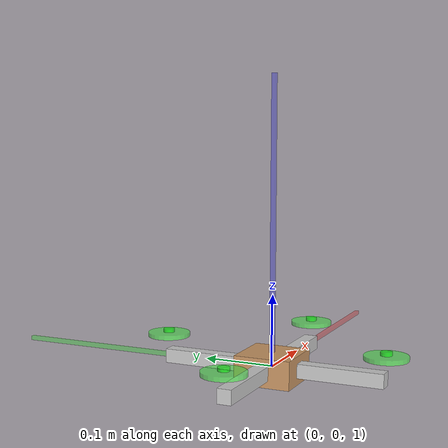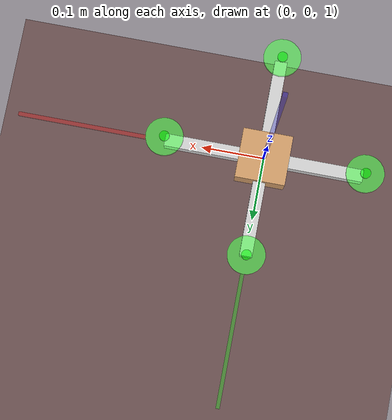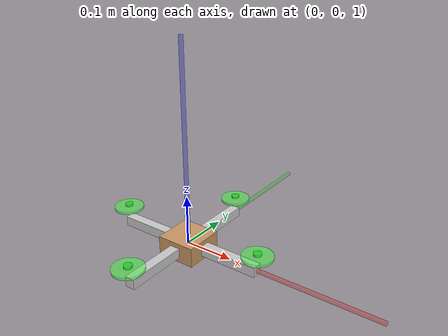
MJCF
<mujoco model="drone_3d_free">
  <compiler angle="degree" inertiafromgeom="true" coordinate="local"/>
  <option timestep="0.01" gravity="0 0 -9.81" density="1" viscosity="1e-5" integrator="RK4"/>

  <default>
    <joint damping="0.02" stiffness="0.001" limited="false"/>
    <geom condim="3" density="200" friction="1 0.5 0.5" margin="0.01" rgba="0.8 0.6 0.4 1"/>
  </default>

  <asset>
    <texture builtin="gradient" type="skybox" height="100" width="100" rgb1="1 1 1" rgb2="0.6 0.8 1"/>
    <texture name="texplane" builtin="checker" height="100" width="100" rgb1="0.7 0.7 0.7" rgb2="0.9 0.9 0.9" type="2d"/>
    <material name="MatPlane" reflectance="0.3" shininess="1" specular="0.5" texrepeat="5 5" texture="texplane"/>
    <material name="MatDrone" specular="0.5" shininess="1" rgba="0.8 0.2 0.2 1"/>
  </asset>

  <worldbody>
    <light cutoff="100" diffuse="1 1 1" dir="-0 0 -1.3" directional="true" exponent="1"
           pos="0 0 1.3" specular=".1 .1 .1"/>
    <geom material="MatPlane" name="floor" pos="0 0 0" rgba="0.4 0.3 0.3 1" size="5 5 0.2" type="plane"/>

    <!-- 🚁 DRON LIBRE (sin cable/viga) -->
    <body name="drone_3d" pos="0 0 1.0">
      <!-- Free joint = 6DOF (posición + orientación) -->
      <joint name="drone_free" type="free"/>

      <geom name="drone_body" type="box" size="0.04 0.04 0.02" material="MatDrone"
            mass="0.30" contype="0" conaffinity="0"/>

      <!-- brazos -->
      <geom name="arm_x_pos" type="box" pos=" 0.10 0 0" size="0.06 0.01 0.01" rgba="0.8 0.8 0.8 1" mass="0.02"/>
      <geom name="arm_x_neg" type="box" pos="-0.10 0 0" size="0.06 0.01 0.01" rgba="0.8 0.8 0.8 1" mass="0.02"/>
      <geom name="arm_y_pos" type="box" pos="0  0.10 0" size="0.01 0.06 0.01" rgba="0.8 0.8 0.8 1" mass="0.02"/>
      <geom name="arm_y_neg" type="box" pos="0 -0.10 0" size="0.01 0.06 0.01" rgba="0.8 0.8 0.8 1" mass="0.02"/>

      <!-- hélices + sitios de motores -->
      <body name="prop0" pos=" 0.16  0.00 0.03">
        <geom type="cylinder" size="0.03 0.003" rgba="0.3 1 0.3 0.6"/>
        <site name="motor0" pos="0 0 0.003" size="0.008" rgba="0 1 0 0.7" type="cylinder"/>
      </body>
      <body name="prop1" pos="-0.16  0.00 0.03">
        <geom type="cylinder" size="0.03 0.003" rgba="0.3 1 0.3 0.6"/>
        <site name="motor1" pos="0 0 0.003" size="0.008" rgba="0 1 0 0.7" type="cylinder"/>
      </body>
      <body name="prop2" pos=" 0.00  0.16 0.03">
        <geom type="cylinder" size="0.03 0.003" rgba="0.3 1 0.3 0.6"/>
        <site name="motor2" pos="0 0 0.003" size="0.008" rgba="0 1 0 0.7" type="cylinder"/>
      </body>
      <body name="prop3" pos=" 0.00 -0.16 0.03">
        <geom type="cylinder" size="0.03 0.003" rgba="0.3 1 0.3 0.6"/>
        <site name="motor3" pos="0 0 0.003" size="0.008" rgba="0 1 0 0.7" type="cylinder"/>
      </body>

      <!-- ejes (visualización) -->
      <site name="x_axis" type="box" pos="0.20 0 0" size="0.20 0.003 0.003" rgba="1 0 0 0.3"/>
      <site name="y_axis" type="box" pos="0 0.20 0" size="0.003 0.20 0.003" rgba="0 1 0 0.3"/>
      <site name="z_axis" type="box" pos="0 0 0.20" size="0.003 0.003 0.20" rgba="0 0 1 0.3"/>
    </body>
  </worldbody>

  <!-- ⚙️ Actuadores -->
  <actuator>
    <motor site="motor0" ctrlrange="0 2" gear="0 0 1 0 0 -0.05"/>
    <motor site="motor1" ctrlrange="0 2" gear="0 0 1 0 0  0.05"/>
    <motor site="motor2" ctrlrange="0 2" gear="0 0 1 0 0 -0.05"/>
    <motor site="motor3" ctrlrange="0 2" gear="0 0 1 0 0  0.05"/>
  </actuator>

  <!-- 📡 Sensores -->
  <sensor>
    <framepos    name="pos_drone"     objtype="body" objname="drone_3d"/>
    <framequat   name="quat_drone"    objtype="body" objname="drone_3d"/>
    <framelinvel name="linvel_drone"  objtype="body" objname="drone_3d"/>
    <frameangvel name="rotvel_drone"  objtype="body" objname="drone_3d"/>
  </sensor>
</mujoco>
